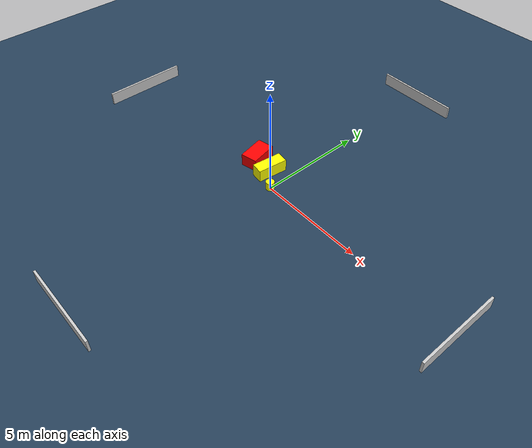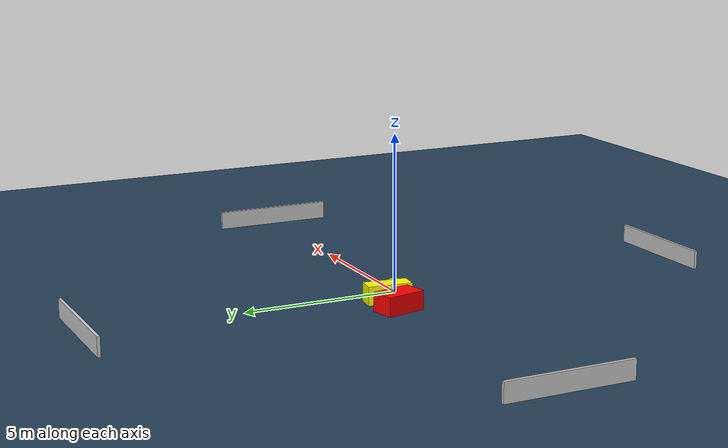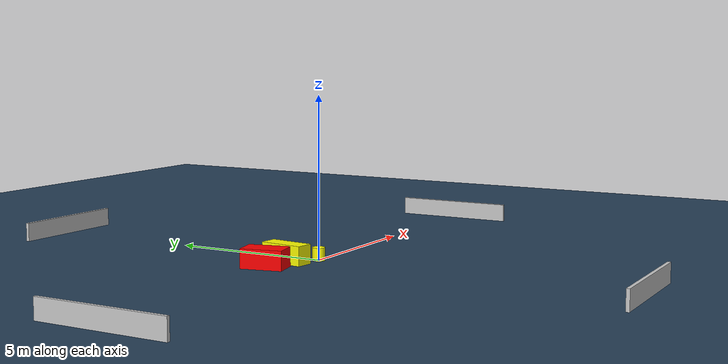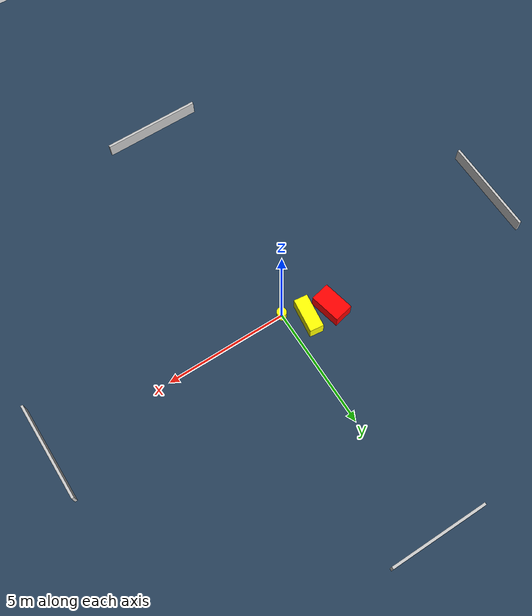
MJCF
<?xml version="1.0" ?>
<mujoco model="generated_environment">
  <option timestep="0.01" integrator="RK4" cone="elliptic"/>
  <default>
    <geom density="1"/>
  </default>
  <asset>
    <texture builtin="gradient" height="3072" name="skybox" rgb1="0.3 0.5 0.7" rgb2="0 0 0" type="skybox" width="512"/>
    <texture builtin="checker" height="300" name="groundplane" rgb1="0.2 0.3 0.4" rgb2="0.1 0.2 0.3" type="2d" width="300"/>
    <material name="groundplane" reflectance="0.2" texrepeat="5 5" texture="groundplane"/>
  </asset>
  <worldbody>
    <light dir="0 0 -1" directional="true" pos="0 0 1.5"/>
    <geom condim="3" friction="0.5 0.005 0.001" material="groundplane" name="floor" pos="0 0 0" size="0 0 0.05" type="plane"/>
    <body name="walls">
      <geom name="wall_1" condim="4" pos="-10.0 0.0 0.3" rgba="0.800000011920929 0.800000011920929 0.800000011920929 1.0" size="0.05 2.0 0.3" type="box"/>
      <geom name="wall_2" condim="4" pos="10.0 0.0 0.3" rgba="0.800000011920929 0.800000011920929 0.800000011920929 1.0" size="0.05 2.0 0.3" type="box"/>
      <geom name="wall_3" condim="4" pos="0.0 -10.0 0.3" rgba="0.800000011920929 0.800000011920929 0.800000011920929 1.0" size="2.0 0.05 0.3" type="box"/>
      <geom name="wall_4" condim="4" pos="0.0 10.0 0.3" rgba="0.800000011920929 0.800000011920929 0.800000011920929 1.0" size="2.0 0.05 0.3" type="box"/>
    </body>
    <body name="robot">
      <joint name="joint_x" type="slide" pos="0 0 0" axis="1 0 0"/>
      <joint name="joint_y" type="slide" pos="0 0 0" axis="0 1 0"/>
      <geom name="robot" type="cylinder" pos="0.0 0.0 0.2" size="0.2 0.2 0.0" mass="5.0" friction="1.0 0.005 0.0001" condim="4" rgba="1.0 1.0 0.0 1.0"/>
    </body>
    <body name="obstacle_1_movable">
      <geom name="obstacle_1_movable" condim="4" pos="-0.7989503223212582 0.6587469253730425 0.3" euler="0 0 83.0871428796368" friction="0.0 0.005 0.001" rgba="1.0 1.0 0.0 1.0" size="0.7038123990271286 0.28253945336452246 0.3" type="box" mass="0.1"/>
      <joint type="free"/>
    </body>
    <body name="obstacle_2_static">
      <geom name="obstacle_2_static" condim="4" pos="-1.7860204429500977 0.7722396610138721 0.3" euler="0 0 12.290968631141673" friction="0.0 0.005 0.001" rgba="1.0 0.0 0.0 1.0" size="0.39382368598786666 0.6451984502406427 0.3" type="box"/>
    </body>
  </worldbody>
  <actuator>
    <motor name="actuator_x" joint="joint_x" gear="1" ctrlrange="-1 1"/>
    <motor name="actuator_y" joint="joint_y" gear="1" ctrlrange="-1 1"/>
  </actuator>
</mujoco>
